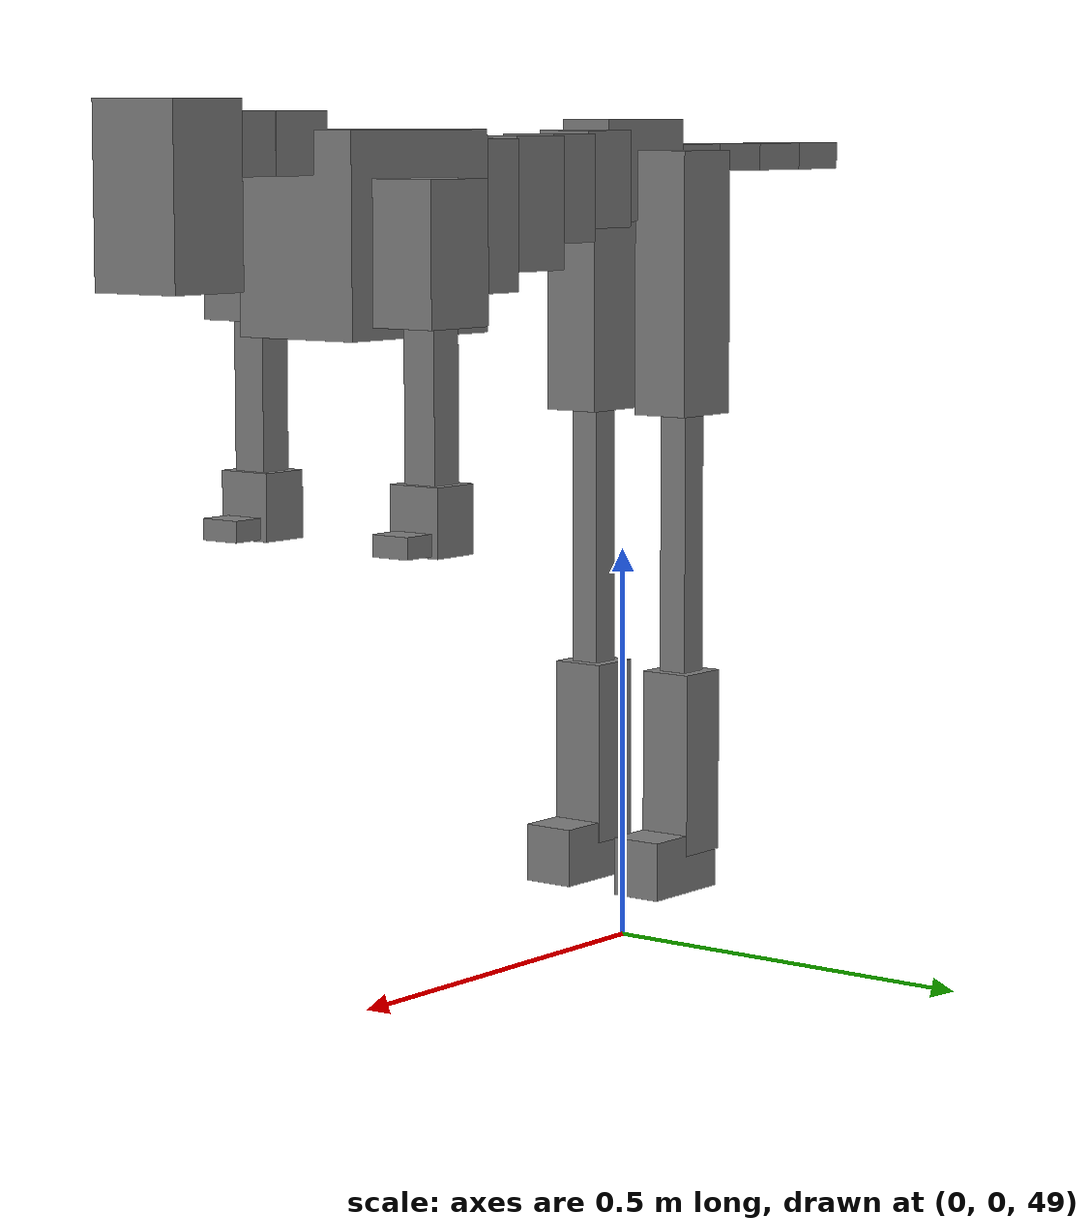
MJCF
<mujoco model="dog">

    <default>
        <joint armature="0.02" stiffness="1" damping="0.2" limited="true"/>
        <geom condim="3" friction="1 0.05 0.05" margin="0.01"/>
        <motor ctrllimited="true" ctrlrange="-1.0 1.0" forcelimited="true" gear="50"/>
    </default>

    <compiler inertiafromgeom="true" angle="radian"/>

    <option timestep="0.016" iterations="50" tolerance="1e-10" solver="Newton" jacobian="dense" cone="pyramidal"/>

    <size nconmax="20000" njmax="60000" nstack="5000000"/>
    <visual>
        <map force="0.1" zfar="30"/>
        <rgba haze="0.15 0.25 0.35 1"/>
        <quality shadowsize="2048"/>
        <global offwidth="800" offheight="800"/>
    </visual>

    <asset>
        <texture type="skybox" builtin="gradient" rgb1="0.3 0.5 0.7" rgb2="0 0 0" width="512" height="512"/>
        <texture name="texplane" type="2d" builtin="checker" rgb1=".2 .3 .4" rgb2=".1 0.15 0.2" width="512" height="512"
                 mark="cross" markrgb=".8 .8 .8"/>
        <texture name="texgeom" type="cube" builtin="flat" mark="cross" width="127" height="1278" rgb1="0.8 0.6 0.4"
                 rgb2="0.8 0.6 0.4" markrgb="1 1 1" random="0.01"/>

        <material name="matplane" reflectance="0.3" texture="texplane" texrepeat="1 1" texuniform="true"/>
        <material name="matgeom" texture="texgeom" texuniform="true" rgba="0.8 0.6 .4 1"/>
    </asset>

    <worldbody>
        <geom name="floor" pos="0 0 0" size="0 0 .25" type="plane" material="matplane" condim="3"/>

        <light directional="false" diffuse=".2 .2 .2" specular="0 0 0" pos="0 0 5" dir="0 0 -1" castshadow="false"/>
        <light mode="targetbodycom" target="torso" directional="false" diffuse=".8 .8 .8" specular="0.3 0.3 0.3"
               pos="0 0 4.0" dir="0 0 -1"/>

        <body name="root" pos="0 0 50">
            <freejoint name="root_1"/>
            <geom type="box" pos="0 0 -0.02" size="0.0774  0.0358  0.063" density="2030"/>

            <body name="spine1" pos="0.054 0 0">
                <joint name="spine1_y" axis="0 1 0" range="0 0.7" limited="true"/>
                <geom type="box" pos="0.02375 0 -0.03" size="0.04375  0.0375  0.05985" density="2030"/>

                <body name="spine2" pos="0.0612 0 0">
                    <joint name="spine2_y" axis="0 1 0" range="-0.15 0.15" limited="true"/>
                    <geom type="box" pos="0.03555  0  -0.04" size="0.04055  0.039  0.06615" density="2030"/>

                    <body name="spine3" pos="0.0730 0 0">
                        <joint name="spine3_y" axis="0 1 0" range="-0.15 0.15" limited="true"/>
                        <geom type="box" pos="0.03555  0  -0.057" size="0.04555  0.0445  0.081" density="2030"/>

                        <body name="spine4" pos="0.0780 0 0">
                            <joint name="spine4_y" axis="0 1 0" range="-0.15 0.15" limited="true"/>
                            <geom type="box" pos="0.05265  0  -0.07" size="0.05265  0.045  0.09135" density="2030"/>

                            <body name="torso" pos="0.1082 0 0">
                                <joint name="torso_y" axis="0 1 0" range="-0.15 0.15" limited="true"/>
                                <geom type="box" pos="0.11925  0  -0.085" size="0.11925  0.085  0.11745"
                                      density="2030"/>

                                <body name="neck1" pos="0.2160  0   0.0180">
                                    <joint name="neck1_y" axis="0 1 0" range="-1.2  -1" limited="true"/>
                                    <geom type="box" pos="0.0423  0  0" size="0.0423  0.03  0.036" density="2325"/>

                                    <body name="neck2" pos="0.0853  0  0">
                                        <joint name="neck2_y" axis="0 1 0" range="0.1  0" limited="true"/>
                                        <geom type="box" pos="0.0423  0  0" size="0.0423  0.03  0.036" density="2325"/>

                                        <body name="head" pos="0.0853  0  0">
                                            <joint name="head_y" axis="0 1 0" range="-0.3  -0.2" limited="true"/>
                                            <geom type="box" pos="0.0531  0  -0.055" size="0.0531  0.06  0.1044"
                                                  density="4030"/>

                                        </body>
                                    </body>
                                </body>

                                <body name="front_shoulder" pos="0.156  0   -0.0480">
                                    <joint name="front_shoulder_y" axis="0 1 0" range="-1 1.5" limited="true"/>
                                    <geom type="box" pos="0 0.13 -0.0564" size="0.0499  0.0426  0.0831" density="1158"/>
                                    <geom type="box" pos="0 -0.13 -0.0564" size="0.0499  0.0426  0.0831"
                                          density="1158"/>

                                    <body name="front_elbow" pos="0  0  -0.1128">
                                        <joint name="front_elbow_y" axis="0 1 0" range="-2 0" limited="true"/>
                                        <geom type="box" pos="0 0.13 -0.1083" size="0.0214  0.0219  0.1083"
                                              density="1081"/>
                                        <geom type="box" pos="0 -0.13 -0.1083" size="0.0214  0.0219  0.1083"
                                              density="1081"/>

                                        <body name="front_wrist" pos="0  0  -0.2167">
                                            <joint name="front_wrist_y" axis="0 1 0" range="-0.2 0" limited="true"/>
                                            <geom type="box" pos="0 0.13 -0.0272" size="0.0314  0.0349  0.0403"
                                                  density="1664"/>
                                            <geom type="box" pos="0 -0.13 -0.0272" size="0.0314  0.0349  0.0403"
                                                  density="1664"/>

                                            <body name="front_finger_end" pos="0  0  -0.0544">
                                                <joint name="front_finger_y" axis="0 1 0" range="-0.4 1"
                                                       limited="true"/>
                                                <geom type="box" pos="0.0258  0.13  0.0022"
                                                      size="0.0473  0.0258  0.0128" density="1515"/>
                                                <geom type="box" pos="0.0258  -0.13  0.0022"
                                                      size="0.0473  0.0258  0.0128" density="1515"/>

                                            </body>

                                        </body>
                                    </body>
                                </body>

                            </body>
                        </body>
                    </body>
                </body>
            </body>

            <body name="back_hip" pos="-0.03 0 -0.018">
                <joint name="back_hip_y" axis="0 1 0" range="-1.5 0.3" limited="true"/>
                <geom type="box" pos="0 0.07 -0.1424" size="0.0483  0.0379  0.1652" density="1154"/>
                <geom type="box" pos="0 -0.07 -0.1424" size="0.0483  0.0379  0.1652" density="1154"/>

                <body name="back_knee" pos="0  0  -0.2849">
                    <joint name="back_knee_y" axis="0 1 0" range="0 2.8" limited="true"/>
                    <geom type="box" pos="0 0.07 -0.1805" size="0.0193  0.0190  0.1960" density="1227"/>
                    <geom type="box" pos="0 -0.07 -0.1805" size="0.0193  0.0190  0.1960" density="1227"/>

                    <body name="back_ankle" pos="0  0  -0.3609">
                        <joint name="back_ankle_y" axis="0 1 0" range="-2.2 0" limited="true"/>
                        <geom type="box" pos="0 0.07 -0.1046" size="0.0344  0.0344  0.1158" density="1284"/>
                        <geom type="box" pos="0 -0.07 -0.1046" size="0.0344  0.0344  0.1158" density="1284"/>

                        <body name="back_toe_end" pos="0  0  -0.2091">
                            <joint name="back_toe_y" axis="0 1 0" range="-0.4 1" limited="true"/>
                            <geom type="box" pos="0.0338  0.07  -0.0218" size="0.0619  0.0338  0.0368" density="1515"/>
                            <geom type="box" pos="0.0338  -0.07  -0.0218" size="0.0619  0.0338  0.0368" density="1515"/>

                        </body>
                    </body>
                </body>
            </body>

            <body name="tail1" pos="-0.074 0 -0.006">
                <joint name="tail1_y" axis="0 1 0" range="-0.2 0.2" limited="true"/>
                <geom type="box" pos="-0.0536  0  0" size="0.045  0.025  0.0175" density="1587"/>

                <body name="tail2" pos="-0.09 0 0">
                    <joint name="tail2_y" axis="0 1 0" range="-0.2 0.2" limited="true"/>
                    <geom type="box" pos="-0.0536  0  0" size="0.045  0.025  0.0175" density="1587"/>

                    <body name="tail3" pos="-0.09 0 0">
                        <joint name="tail3_y" axis="0 1 0" range="-0.2 0.2" limited="true"/>
                        <geom type="box" pos="-0.0536  0  0" size="0.045  0.025  0.0175" density="1587"/>

                        <body name="tail4" pos="-0.09 0 0">
                            <joint name="tail4_y" axis="0 1 0" range="-0.2 0.2" limited="true"/>
                            <geom type="box" pos="-0.0536  0  0" size="0.045  0.025  0.0175" density="1587"/>

                        </body>
                    </body>
                </body>
            </body>
        </body>
    </worldbody>

    <actuator>
        <motor joint="spine1_y" forcerange="-150 150     "/>
        <motor joint="spine2_y" forcerange="-150 150     "/>
        <motor joint="spine3_y" forcerange="-150 150     "/>
        <motor joint="spine4_y" forcerange="-150 150     "/>
        <motor joint="torso_y" forcerange="-150 150     "/>
        <motor joint="neck1_y" forcerange="-100 100       "/>
        <motor joint="neck2_y" forcerange="-100 100       "/>
        <motor joint="head_y" forcerange="-150 150       "/>
        <motor joint="front_shoulder_y" forcerange="-192.60 191.63"/>
        <motor joint="front_elbow_y" forcerange="-114.27 145.05"/>
        <motor joint="front_wrist_y" forcerange="-139.28 140.04"/>
        <motor joint="front_finger_y" forcerange="-42.15 55.53"/>
        <motor joint="back_hip_y" forcerange="-381.70 322.99"/>
        <motor joint="back_knee_y" forcerange="-215.70 260.63"/>
        <motor joint="back_angle_y" forcerange="-200.60 249.10"/>
        <motor joint="back_toe_y" forcerange="-131.56 58.47"/>
        <motor joint="tail1_y" forcerange="-50 50     "/>
        <motor joint="tail2_y" forcerange="-50 50     "/>
        <motor joint="tail3_y" forcerange="-50 50     "/>
        <motor joint="tail4_y" forcerange="-50 50     "/>
    </actuator>
</mujoco>
